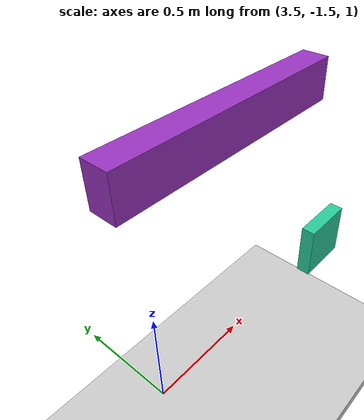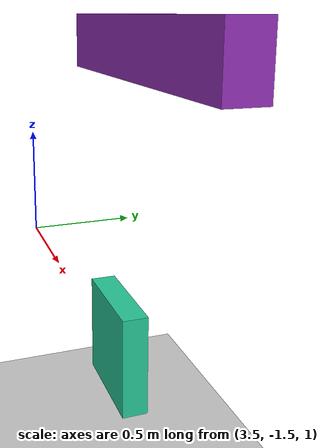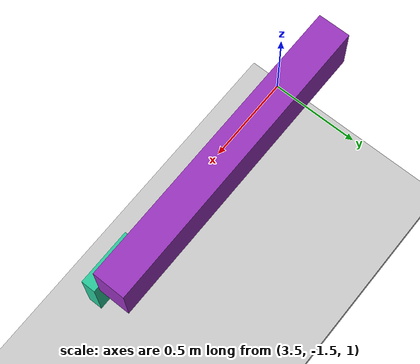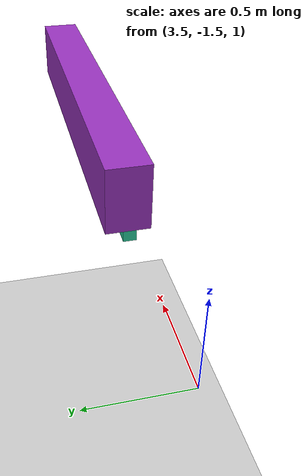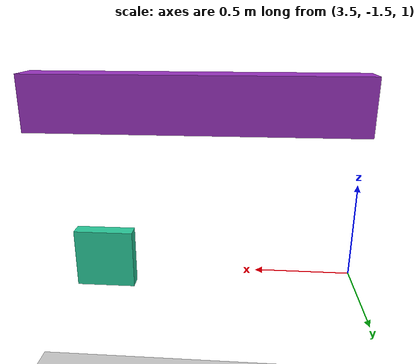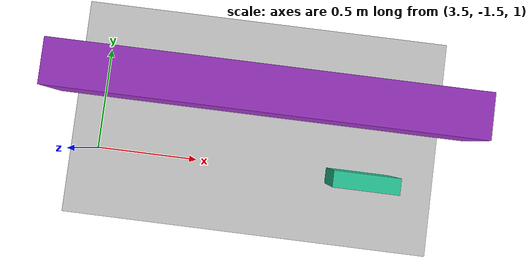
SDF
<sdf version="1.9">
 <world name="default">
  <model name="ground_plane">
   <static>true</static>
   <pose>4.75 0 -0.05 0 0 0</pose>
   <link name="body">
    <collision name="collision"><geometry><box><size>13.5 12 0.1</size></box></geometry></collision>
    <visual name="visual">
     <geometry><box><size>13.5 12 0.1</size></box></geometry>
     <material><ambient>0.8 0.8 0.8 1</ambient><diffuse>0.8 0.8 0.8 1</diffuse></material>
    </visual>
   </link>
  </model>
  <model name="r3geo_base_r010_right_1_lintel">
   <static>true</static>
   <pose>4.3 -1.2 1.95 0 0 0</pose>
   <link name="body">
    <collision name="collision"><geometry><box><size>1.5 0.16 0.25</size></box></geometry></collision>
    <visual name="visual">
     <geometry><box><size>1.5 0.16 0.25</size></box></geometry>
     <material><ambient>0.6 0.2 0.75 1</ambient><diffuse>0.6 0.2 0.75 1</diffuse></material>
    </visual>
   </link>
  </model>
  <model name="r3geo_base_r010_right_1_entrance_sign">
   <static>true</static>
   <pose>4.83 -1.5 1.05 0 0 0</pose>
   <link name="body">
    <visual name="visual">
     <geometry><box><size>0.32 0.08 0.32</size></box></geometry>
     <material><ambient>0.16 0.8 0.61 1</ambient><diffuse>0.16 0.8 0.61 1</diffuse></material>
    </visual>
   </link>
  </model>
 </world>
</sdf>
